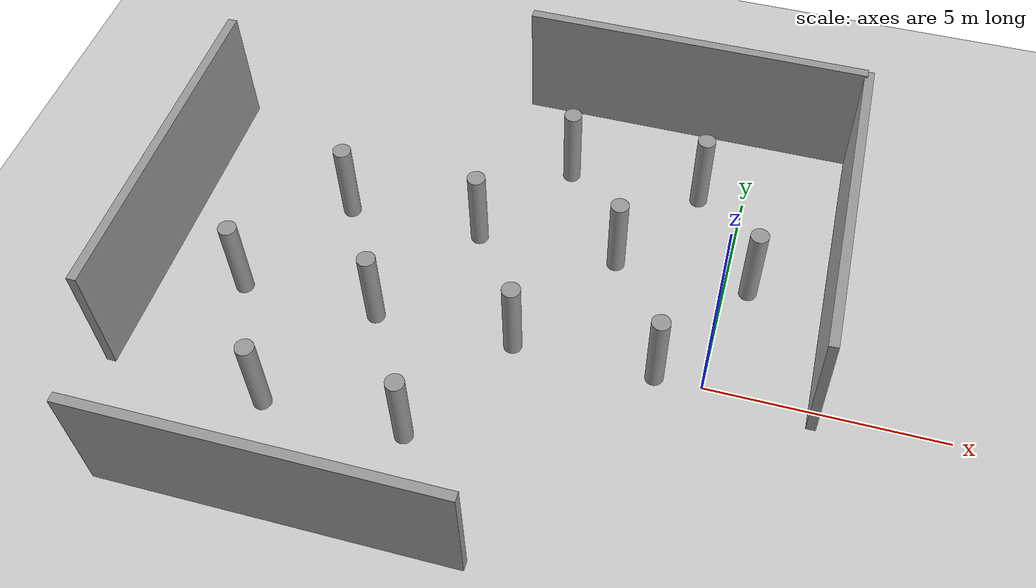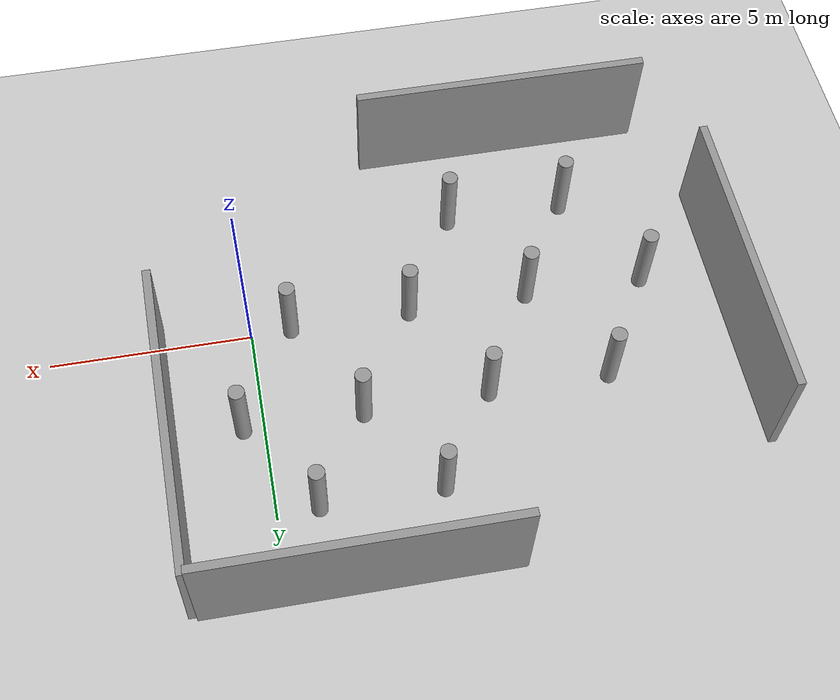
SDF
<sdf version="1.7">
 <world name="default">
  <light name="sun" type="directional">
   <pose>0 0 10 0 -0 0</pose>
   <diffuse>0.8 0.8 0.8 1</diffuse>
   <specular>0.2 0.2 0.2 1</specular>
   <attenuation>
    <range>1000</range>
    <constant>0.9</constant>
    <linear>0.01</linear>
    <quadratic>0.001</quadratic>
   </attenuation>
   <direction>-0.5 0.1 -0.9</direction>
   <spot><inner_angle>0</inner_angle><outer_angle>0</outer_angle><falloff>0</falloff></spot>
  </light>
  <model name="ground_plane">
   <static>1</static>
   <link name="link">
    <collision name="collision">
     <geometry><plane><normal>0 0 1</normal><size>100 100</size></plane></geometry>
     <surface>
      <contact><collide_bitmask>65535</collide_bitmask></contact>
      <friction><ode><mu>100</mu><mu2>50</mu2></ode></friction>
     </surface>
    </collision>
    <visual name="visual">
     <cast_shadows>0</cast_shadows>
     <geometry><plane><normal>0 0 1</normal><size>100 100</size></plane></geometry>
     <material>
      <script><uri>file://media/materials/scripts/gazebo.material</uri><name>Gazebo/Grey</name></script>
     </material>
    </visual>
   </link>
  </model>
  <gravity>0 0 -9.8</gravity>
  <magnetic_field>6e-06 2.3e-05 -4.2e-05</magnetic_field>
  <atmosphere type="adiabatic"/>
  <physics type="ode">
   <max_step_size>0.001</max_step_size>
   <real_time_factor>1</real_time_factor>
   <real_time_update_rate>1000</real_time_update_rate>
  </physics>
  <scene><ambient>0.4 0.4 0.4 1</ambient><background>0.7 0.7 0.7 1</background><shadows>1</shadows></scene>
  <spherical_coordinates>
   <surface_model>EARTH_WGS84</surface_model>
   <latitude_deg>0</latitude_deg>
   <longitude_deg>0</longitude_deg>
   <elevation>0</elevation>
   <heading_deg>0</heading_deg>
  </spherical_coordinates>
  <model name="grey_wall_clone">
   <static>1</static>
   <link name="link">
    <pose>0 0 1.4 0 -0 0</pose>
    <collision name="collision"><geometry><box><size>7.5 0.2 2.8</size></box></geometry></collision>
    <visual name="visual">
     <cast_shadows>0</cast_shadows>
     <geometry><box><size>7.5 0.2 2.8</size></box></geometry>
     <material>
      <script>
       <uri>model://grey_wall/materials/scripts</uri>
       <uri>model://grey_wall/materials/textures</uri>
       <name>vrc/grey_wall</name>
      </script>
     </material>
    </visual>
   </link>
   <pose>-7.26649 -4.90154 0 0 -0 0</pose>
  </model>
  <model name="grey_wall_clone_0">
   <static>1</static>
   <link name="link">
    <pose>0 0 1.4 0 -0 0</pose>
    <collision name="collision"><geometry><box><size>7.5 0.2 2.8</size></box></geometry></collision>
    <visual name="visual">
     <cast_shadows>0</cast_shadows>
     <geometry><box><size>7.5 0.2 2.8</size></box></geometry>
     <material>
      <script>
       <uri>model://grey_wall/materials/scripts</uri>
       <uri>model://grey_wall/materials/textures</uri>
       <name>vrc/grey_wall</name>
      </script>
     </material>
    </visual>
   </link>
   <pose>-1.70221 6.98255 0 0 -0 0</pose>
  </model>
  <model name="grey_wall_clone_clone">
   <static>1</static>
   <link name="link">
    <pose>0 0 1.4 0 -0 0</pose>
    <collision name="collision"><geometry><box><size>7.5 0.2 2.8</size></box></geometry></collision>
    <visual name="visual">
     <cast_shadows>0</cast_shadows>
     <geometry><box><size>7.5 0.2 2.8</size></box></geometry>
     <material>
      <script>
       <uri>model://grey_wall/materials/scripts</uri>
       <uri>model://grey_wall/materials/textures</uri>
       <name>vrc/grey_wall</name>
      </script>
     </material>
    </visual>
   </link>
   <pose>2.19088 3.25119 0.062868 -0.02354 0.030124 1.58206</pose>
  </model>
  <model name="grey_wall">
   <static>1</static>
   <link name="link">
    <pose>0 0 1.4 0 -0 0</pose>
    <collision name="collision"><geometry><box><size>7.5 0.2 2.8</size></box></geometry></collision>
    <visual name="visual">
     <cast_shadows>0</cast_shadows>
     <geometry><box><size>7.5 0.2 2.8</size></box></geometry>
     <material>
      <script>
       <uri>model://grey_wall/materials/scripts</uri>
       <uri>model://grey_wall/materials/textures</uri>
       <name>vrc/grey_wall</name>
      </script>
     </material>
    </visual>
   </link>
   <pose>-11.9009 1.26466 0 0 0 -1.57182</pose>
  </model>
  <model name="unit_cylinder_0_clone_clone">
   <pose>-10 4e-06 0.992555 0 0 -0.007171</pose>
   <link name="link">
    <inertial>
     <mass>1</mass>
     <inertia><ixx>0.145833</ixx><ixy>0</ixy><ixz>0</ixz><iyy>0.145833</iyy><iyz>0</iyz><izz>0.125</izz></inertia>
    </inertial>
    <collision name="collision">
     <geometry><cylinder><radius>0.194172</radius><length>1.98512</length></cylinder></geometry>
    </collision>
    <visual name="visual">
     <geometry><cylinder><radius>0.194172</radius><length>1.98512</length></cylinder></geometry>
     <material>
      <script><name>Gazebo/Grey</name><uri>file://media/materials/scripts/gazebo.material</uri></script>
     </material>
    </visual>
   </link>
  </model>
  <model name="unit_cylinder_0_clone_clone_0">
   <pose>-5.5 2.598 0.992555 0 0 -0.01108</pose>
   <link name="link">
    <inertial>
     <mass>1</mass>
     <inertia><ixx>0.145833</ixx><ixy>0</ixy><ixz>0</ixz><iyy>0.145833</iyy><iyz>0</iyz><izz>0.125</izz></inertia>
    </inertial>
    <collision name="collision">
     <geometry><cylinder><radius>0.194172</radius><length>1.98512</length></cylinder></geometry>
    </collision>
    <visual name="visual">
     <geometry><cylinder><radius>0.194172</radius><length>1.98512</length></cylinder></geometry>
     <material>
      <script><name>Gazebo/Grey</name><uri>file://media/materials/scripts/gazebo.material</uri></script>
     </material>
    </visual>
   </link>
  </model>
  <model name="unit_cylinder_0_clone_clone_clone">
   <pose>-3.97359 4.89546 0.992555 0 0 -0.010471</pose>
   <link name="link">
    <inertial>
     <mass>1</mass>
     <inertia><ixx>0.145833</ixx><ixy>0</ixy><ixz>0</ixz><iyy>0.145833</iyy><iyz>0</iyz><izz>0.125</izz></inertia>
    </inertial>
    <collision name="collision">
     <geometry><cylinder><radius>0.194172</radius><length>1.98512</length></cylinder></geometry>
    </collision>
    <visual name="visual">
     <geometry><cylinder><radius>0.194172</radius><length>1.98512</length></cylinder></geometry>
     <material>
      <script><name>Gazebo/Grey</name><uri>file://media/materials/scripts/gazebo.material</uri></script>
     </material>
    </visual>
   </link>
  </model>
  <model name="unit_cylinder_0_clone_clone_2">
   <pose>-8.49996 2.59801 0.992555 0 0 -0.009198</pose>
   <link name="link">
    <inertial>
     <mass>1</mass>
     <inertia><ixx>0.145833</ixx><ixy>0</ixy><ixz>0</ixz><iyy>0.145833</iyy><iyz>0</iyz><izz>0.125</izz></inertia>
    </inertial>
    <collision name="collision">
     <geometry><cylinder><radius>0.194173</radius><length>1.98512</length></cylinder></geometry>
    </collision>
    <visual name="visual">
     <geometry><cylinder><radius>0.194173</radius><length>1.98512</length></cylinder></geometry>
     <material>
      <script><name>Gazebo/Grey</name><uri>file://media/materials/scripts/gazebo.material</uri></script>
     </material>
    </visual>
   </link>
  </model>
  <model name="unit_cylinder_0_clone_clone_clone_clone">
   <pose>-3.99994 1.6e-05 0.992555 0 0 -0.014542</pose>
   <link name="link">
    <inertial>
     <mass>1</mass>
     <inertia><ixx>0.145833</ixx><ixy>0</ixy><ixz>0</ixz><iyy>0.145833</iyy><iyz>0</iyz><izz>0.125</izz></inertia>
    </inertial>
    <collision name="collision">
     <geometry><cylinder><radius>0.194172</radius><length>1.98512</length></cylinder></geometry>
    </collision>
    <visual name="visual">
     <geometry><cylinder><radius>0.194172</radius><length>1.98512</length></cylinder></geometry>
     <material>
      <script><name>Gazebo/Grey</name><uri>file://media/materials/scripts/gazebo.material</uri></script>
     </material>
    </visual>
   </link>
  </model>
  <model name="unit_cylinder_0_clone_clone_clone_clone_0">
   <pose>-8.5 -2.598 0.992555 0 0 -0.008341</pose>
   <link name="link">
    <inertial>
     <mass>1</mass>
     <inertia><ixx>0.145833</ixx><ixy>0</ixy><ixz>0</ixz><iyy>0.145833</iyy><iyz>0</iyz><izz>0.125</izz></inertia>
    </inertial>
    <collision name="collision">
     <geometry><cylinder><radius>0.194172</radius><length>1.98512</length></cylinder></geometry>
    </collision>
    <visual name="visual">
     <geometry><cylinder><radius>0.194172</radius><length>1.98512</length></cylinder></geometry>
     <material>
      <script><name>Gazebo/Grey</name><uri>file://media/materials/scripts/gazebo.material</uri></script>
     </material>
    </visual>
   </link>
  </model>
  <model name="unit_cylinder_0_clone_clone_clone_clone_0_clone">
   <pose>-5.5 -2.598 0.992555 0 0 -0.006912</pose>
   <link name="link">
    <inertial>
     <mass>1</mass>
     <inertia><ixx>0.145833</ixx><ixy>0</ixy><ixz>0</ixz><iyy>0.145833</iyy><iyz>0</iyz><izz>0.125</izz></inertia>
    </inertial>
    <collision name="collision">
     <geometry><cylinder><radius>0.194172</radius><length>1.98512</length></cylinder></geometry>
    </collision>
    <visual name="visual">
     <geometry><cylinder><radius>0.194172</radius><length>1.98512</length></cylinder></geometry>
     <material>
      <script><name>Gazebo/Grey</name><uri>file://media/materials/scripts/gazebo.material</uri></script>
     </material>
    </visual>
   </link>
  </model>
  <model name="unit_cylinder_0_clone_clone_clone_clone_0_clone_1">
   <pose>-1.00818 4.89416 0.992556 0 0 -0.012404</pose>
   <link name="link">
    <inertial>
     <mass>1</mass>
     <inertia><ixx>0.145833</ixx><ixy>0</ixy><ixz>0</ixz><iyy>0.145833</iyy><iyz>0</iyz><izz>0.125</izz></inertia>
    </inertial>
    <collision name="collision">
     <geometry><cylinder><radius>0.194172</radius><length>1.98512</length></cylinder></geometry>
    </collision>
    <visual name="visual">
     <geometry><cylinder><radius>0.194172</radius><length>1.98512</length></cylinder></geometry>
     <material>
      <script><name>Gazebo/Grey</name><uri>file://media/materials/scripts/gazebo.material</uri></script>
     </material>
    </visual>
   </link>
  </model>
  <model name="unit_cylinder_0_clone_clone_clone_clone_0_clone_2">
   <pose>0.500016 2.59801 0.992555 0 -0 0.047201</pose>
   <link name="link">
    <inertial>
     <mass>1</mass>
     <inertia><ixx>0.145833</ixx><ixy>0</ixy><ixz>0</ixz><iyy>0.145833</iyy><iyz>0</iyz><izz>0.125</izz></inertia>
    </inertial>
    <collision name="collision">
     <geometry><cylinder><radius>0.194172</radius><length>1.98512</length></cylinder></geometry>
    </collision>
    <visual name="visual">
     <geometry><cylinder><radius>0.194172</radius><length>1.98512</length></cylinder></geometry>
     <material>
      <script><name>Gazebo/Grey</name><uri>file://media/materials/scripts/gazebo.material</uri></script>
     </material>
    </visual>
   </link>
  </model>
  <model name="unit_cylinder_0_clone_clone_2_clone">
   <pose>-7.00375 -0.014755 0.992555 0 0 -0.009578</pose>
   <link name="link">
    <inertial>
     <mass>1</mass>
     <inertia><ixx>0.145833</ixx><ixy>0</ixy><ixz>0</ixz><iyy>0.145833</iyy><iyz>0</iyz><izz>0.125</izz></inertia>
    </inertial>
    <collision name="collision">
     <geometry><cylinder><radius>0.194173</radius><length>1.98512</length></cylinder></geometry>
    </collision>
    <visual name="visual">
     <geometry><cylinder><radius>0.194173</radius><length>1.98512</length></cylinder></geometry>
     <material>
      <script><name>Gazebo/Grey</name><uri>file://media/materials/scripts/gazebo.material</uri></script>
     </material>
    </visual>
   </link>
  </model>
  <model name="unit_cylinder_0_clone_clone_2_clone_0">
   <pose>-2.41615 2.64892 0.992555 0 0 -0.009877</pose>
   <link name="link">
    <inertial>
     <mass>1</mass>
     <inertia><ixx>0.145833</ixx><ixy>0</ixy><ixz>0</ixz><iyy>0.145833</iyy><iyz>0</iyz><izz>0.125</izz></inertia>
    </inertial>
    <collision name="collision">
     <geometry><cylinder><radius>0.194173</radius><length>1.98512</length></cylinder></geometry>
    </collision>
    <visual name="visual">
     <geometry><cylinder><radius>0.194173</radius><length>1.98512</length></cylinder></geometry>
     <material>
      <script><name>Gazebo/Grey</name><uri>file://media/materials/scripts/gazebo.material</uri></script>
     </material>
    </visual>
   </link>
  </model>
  <model name="unit_cylinder_0_clone_clone_clone_clone_clone">
   <pose>-0.99996 9e-06 0.992555 0 0 -0.015306</pose>
   <link name="link">
    <inertial>
     <mass>1</mass>
     <inertia><ixx>0.145833</ixx><ixy>0</ixy><ixz>0</ixz><iyy>0.145833</iyy><iyz>0</iyz><izz>0.125</izz></inertia>
    </inertial>
    <collision name="collision">
     <geometry><cylinder><radius>0.194172</radius><length>1.98512</length></cylinder></geometry>
    </collision>
    <visual name="visual">
     <geometry><cylinder><radius>0.194172</radius><length>1.98512</length></cylinder></geometry>
     <material>
      <script><name>Gazebo/Grey</name><uri>file://media/materials/scripts/gazebo.material</uri></script>
     </material>
    </visual>
   </link>
  </model>
 </world>
</sdf>
